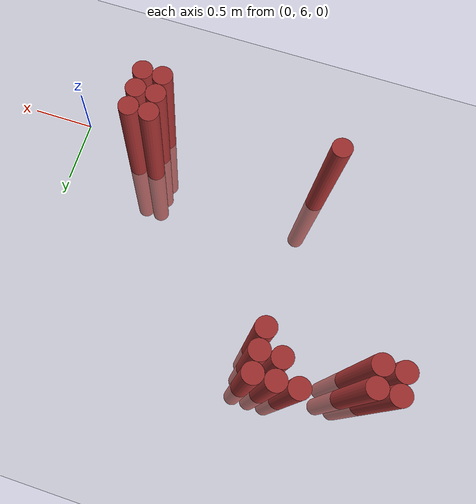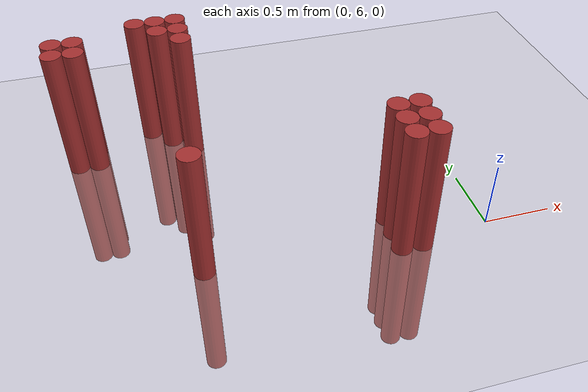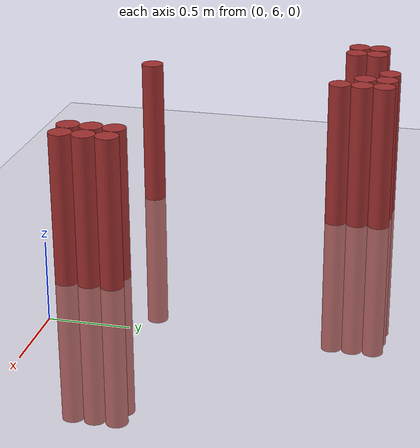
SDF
<sdf version="1.6">
 <world name="default">
  <model name="ground_plane">
   <static>1</static>
   <link name="link">
    <collision name="collision">
     <geometry><plane><normal>0 0 1</normal><size>100 100</size></plane></geometry>
     <surface><friction><ode><mu>100</mu><mu2>50</mu2></ode></friction></surface>
    </collision>
    <visual name="visual">
     <cast_shadows>0</cast_shadows>
     <geometry><plane><normal>0 0 1</normal><size>100 100</size></plane></geometry>
     <material>
      <script><uri>file://media/materials/scripts/gazebo.material</uri><name>Gazebo/Grey</name></script>
     </material>
    </visual>
   </link>
  </model>
  <model name="unit_cylinder_183">
   <static>1</static>
   <pose>-2.775000 7.425000 0.000000 0.000000 0.000000 0.000000</pose>
   <link name="link">
    <inertial>
     <mass>1</mass>
     <inertia><ixx>0.145833</ixx><ixy>0</ixy><ixz>0</ixz><iyy>0.145833</iyy><iyz>0</iyz><izz>0.125</izz></inertia>
    </inertial>
    <collision name="collision">
     <geometry><cylinder><radius>0.075000</radius><length>2</length></cylinder></geometry>
    </collision>
    <visual name="visual">
     <geometry><cylinder><radius>0.075000</radius><length>2</length></cylinder></geometry>
     <material>
      <ambient>0.648000 0.192000 0.192000 1</ambient>
      <diffuse>0.648000 0.192000 0.192000 1</diffuse>
     </material>
     <material>
      <script><name>Gazebo/Grey</name><uri>file://media/materials/scripts/gazebo.material</uri></script>
     </material>
    </visual>
   </link>
  </model>
  <model name="unit_cylinder_184">
   <static>1</static>
   <pose>-2.775000 7.575000 0.000000 0.000000 0.000000 0.000000</pose>
   <link name="link">
    <inertial>
     <mass>1</mass>
     <inertia><ixx>0.145833</ixx><ixy>0</ixy><ixz>0</ixz><iyy>0.145833</iyy><iyz>0</iyz><izz>0.125</izz></inertia>
    </inertial>
    <collision name="collision">
     <geometry><cylinder><radius>0.075000</radius><length>2</length></cylinder></geometry>
    </collision>
    <visual name="visual">
     <geometry><cylinder><radius>0.075000</radius><length>2</length></cylinder></geometry>
     <material>
      <ambient>0.648000 0.192000 0.192000 1</ambient>
      <diffuse>0.648000 0.192000 0.192000 1</diffuse>
     </material>
     <material>
      <script><name>Gazebo/Grey</name><uri>file://media/materials/scripts/gazebo.material</uri></script>
     </material>
    </visual>
   </link>
  </model>
  <model name="unit_cylinder_187">
   <static>1</static>
   <pose>-2.625000 7.425000 0.000000 0.000000 0.000000 0.000000</pose>
   <link name="link">
    <inertial>
     <mass>1</mass>
     <inertia><ixx>0.145833</ixx><ixy>0</ixy><ixz>0</ixz><iyy>0.145833</iyy><iyz>0</iyz><izz>0.125</izz></inertia>
    </inertial>
    <collision name="collision">
     <geometry><cylinder><radius>0.075000</radius><length>2</length></cylinder></geometry>
    </collision>
    <visual name="visual">
     <geometry><cylinder><radius>0.075000</radius><length>2</length></cylinder></geometry>
     <material>
      <ambient>0.648000 0.192000 0.192000 1</ambient>
      <diffuse>0.648000 0.192000 0.192000 1</diffuse>
     </material>
     <material>
      <script><name>Gazebo/Grey</name><uri>file://media/materials/scripts/gazebo.material</uri></script>
     </material>
    </visual>
   </link>
  </model>
  <model name="unit_cylinder_188">
   <static>1</static>
   <pose>-2.625000 7.575000 0.000000 0.000000 0.000000 0.000000</pose>
   <link name="link">
    <inertial>
     <mass>1</mass>
     <inertia><ixx>0.145833</ixx><ixy>0</ixy><ixz>0</ixz><iyy>0.145833</iyy><iyz>0</iyz><izz>0.125</izz></inertia>
    </inertial>
    <collision name="collision">
     <geometry><cylinder><radius>0.075000</radius><length>2</length></cylinder></geometry>
    </collision>
    <visual name="visual">
     <geometry><cylinder><radius>0.075000</radius><length>2</length></cylinder></geometry>
     <material>
      <ambient>0.648000 0.192000 0.192000 1</ambient>
      <diffuse>0.648000 0.192000 0.192000 1</diffuse>
     </material>
     <material>
      <script><name>Gazebo/Grey</name><uri>file://media/materials/scripts/gazebo.material</uri></script>
     </material>
    </visual>
   </link>
  </model>
  <model name="unit_cylinder_196">
   <static>1</static>
   <pose>-2.175000 7.725000 0.000000 0.000000 0.000000 0.000000</pose>
   <link name="link">
    <inertial>
     <mass>1</mass>
     <inertia><ixx>0.145833</ixx><ixy>0</ixy><ixz>0</ixz><iyy>0.145833</iyy><iyz>0</iyz><izz>0.125</izz></inertia>
    </inertial>
    <collision name="collision">
     <geometry><cylinder><radius>0.075000</radius><length>2</length></cylinder></geometry>
    </collision>
    <visual name="visual">
     <geometry><cylinder><radius>0.075000</radius><length>2</length></cylinder></geometry>
     <material>
      <ambient>0.648000 0.192000 0.192000 1</ambient>
      <diffuse>0.648000 0.192000 0.192000 1</diffuse>
     </material>
     <material>
      <script><name>Gazebo/Grey</name><uri>file://media/materials/scripts/gazebo.material</uri></script>
     </material>
    </visual>
   </link>
  </model>
  <model name="unit_cylinder_201">
   <static>1</static>
   <pose>-2.025000 6.075000 0.000000 0.000000 0.000000 0.000000</pose>
   <link name="link">
    <inertial>
     <mass>1</mass>
     <inertia><ixx>0.145833</ixx><ixy>0</ixy><ixz>0</ixz><iyy>0.145833</iyy><iyz>0</iyz><izz>0.125</izz></inertia>
    </inertial>
    <collision name="collision">
     <geometry><cylinder><radius>0.075000</radius><length>2</length></cylinder></geometry>
    </collision>
    <visual name="visual">
     <geometry><cylinder><radius>0.075000</radius><length>2</length></cylinder></geometry>
     <material>
      <ambient>0.648000 0.192000 0.192000 1</ambient>
      <diffuse>0.648000 0.192000 0.192000 1</diffuse>
     </material>
     <material>
      <script><name>Gazebo/Grey</name><uri>file://media/materials/scripts/gazebo.material</uri></script>
     </material>
    </visual>
   </link>
  </model>
  <model name="unit_cylinder_202">
   <static>1</static>
   <pose>-2.025000 7.575000 0.000000 0.000000 0.000000 0.000000</pose>
   <link name="link">
    <inertial>
     <mass>1</mass>
     <inertia><ixx>0.145833</ixx><ixy>0</ixy><ixz>0</ixz><iyy>0.145833</iyy><iyz>0</iyz><izz>0.125</izz></inertia>
    </inertial>
    <collision name="collision">
     <geometry><cylinder><radius>0.075000</radius><length>2</length></cylinder></geometry>
    </collision>
    <visual name="visual">
     <geometry><cylinder><radius>0.075000</radius><length>2</length></cylinder></geometry>
     <material>
      <ambient>0.648000 0.192000 0.192000 1</ambient>
      <diffuse>0.648000 0.192000 0.192000 1</diffuse>
     </material>
     <material>
      <script><name>Gazebo/Grey</name><uri>file://media/materials/scripts/gazebo.material</uri></script>
     </material>
    </visual>
   </link>
  </model>
  <model name="unit_cylinder_203">
   <static>1</static>
   <pose>-2.025000 7.725000 0.000000 0.000000 0.000000 0.000000</pose>
   <link name="link">
    <inertial>
     <mass>1</mass>
     <inertia><ixx>0.145833</ixx><ixy>0</ixy><ixz>0</ixz><iyy>0.145833</iyy><iyz>0</iyz><izz>0.125</izz></inertia>
    </inertial>
    <collision name="collision">
     <geometry><cylinder><radius>0.075000</radius><length>2</length></cylinder></geometry>
    </collision>
    <visual name="visual">
     <geometry><cylinder><radius>0.075000</radius><length>2</length></cylinder></geometry>
     <material>
      <ambient>0.648000 0.192000 0.192000 1</ambient>
      <diffuse>0.648000 0.192000 0.192000 1</diffuse>
     </material>
     <material>
      <script><name>Gazebo/Grey</name><uri>file://media/materials/scripts/gazebo.material</uri></script>
     </material>
    </visual>
   </link>
  </model>
  <model name="unit_cylinder_208">
   <static>1</static>
   <pose>-1.875000 7.425000 0.000000 0.000000 0.000000 0.000000</pose>
   <link name="link">
    <inertial>
     <mass>1</mass>
     <inertia><ixx>0.145833</ixx><ixy>0</ixy><ixz>0</ixz><iyy>0.145833</iyy><iyz>0</iyz><izz>0.125</izz></inertia>
    </inertial>
    <collision name="collision">
     <geometry><cylinder><radius>0.075000</radius><length>2</length></cylinder></geometry>
    </collision>
    <visual name="visual">
     <geometry><cylinder><radius>0.075000</radius><length>2</length></cylinder></geometry>
     <material>
      <ambient>0.648000 0.192000 0.192000 1</ambient>
      <diffuse>0.648000 0.192000 0.192000 1</diffuse>
     </material>
     <material>
      <script><name>Gazebo/Grey</name><uri>file://media/materials/scripts/gazebo.material</uri></script>
     </material>
    </visual>
   </link>
  </model>
  <model name="unit_cylinder_209">
   <static>1</static>
   <pose>-1.875000 7.575000 0.000000 0.000000 0.000000 0.000000</pose>
   <link name="link">
    <inertial>
     <mass>1</mass>
     <inertia><ixx>0.145833</ixx><ixy>0</ixy><ixz>0</ixz><iyy>0.145833</iyy><iyz>0</iyz><izz>0.125</izz></inertia>
    </inertial>
    <collision name="collision">
     <geometry><cylinder><radius>0.075000</radius><length>2</length></cylinder></geometry>
    </collision>
    <visual name="visual">
     <geometry><cylinder><radius>0.075000</radius><length>2</length></cylinder></geometry>
     <material>
      <ambient>0.648000 0.192000 0.192000 1</ambient>
      <diffuse>0.648000 0.192000 0.192000 1</diffuse>
     </material>
     <material>
      <script><name>Gazebo/Grey</name><uri>file://media/materials/scripts/gazebo.material</uri></script>
     </material>
    </visual>
   </link>
  </model>
  <model name="unit_cylinder_210">
   <static>1</static>
   <pose>-1.875000 7.725000 0.000000 0.000000 0.000000 0.000000</pose>
   <link name="link">
    <inertial>
     <mass>1</mass>
     <inertia><ixx>0.145833</ixx><ixy>0</ixy><ixz>0</ixz><iyy>0.145833</iyy><iyz>0</iyz><izz>0.125</izz></inertia>
    </inertial>
    <collision name="collision">
     <geometry><cylinder><radius>0.075000</radius><length>2</length></cylinder></geometry>
    </collision>
    <visual name="visual">
     <geometry><cylinder><radius>0.075000</radius><length>2</length></cylinder></geometry>
     <material>
      <ambient>0.648000 0.192000 0.192000 1</ambient>
      <diffuse>0.648000 0.192000 0.192000 1</diffuse>
     </material>
     <material>
      <script><name>Gazebo/Grey</name><uri>file://media/materials/scripts/gazebo.material</uri></script>
     </material>
    </visual>
   </link>
  </model>
  <model name="unit_cylinder_221">
   <static>1</static>
   <pose>-0.675000 5.925000 0.000000 0.000000 0.000000 0.000000</pose>
   <link name="link">
    <inertial>
     <mass>1</mass>
     <inertia><ixx>0.145833</ixx><ixy>0</ixy><ixz>0</ixz><iyy>0.145833</iyy><iyz>0</iyz><izz>0.125</izz></inertia>
    </inertial>
    <collision name="collision">
     <geometry><cylinder><radius>0.075000</radius><length>2</length></cylinder></geometry>
    </collision>
    <visual name="visual">
     <geometry><cylinder><radius>0.075000</radius><length>2</length></cylinder></geometry>
     <material>
      <ambient>0.648000 0.192000 0.192000 1</ambient>
      <diffuse>0.648000 0.192000 0.192000 1</diffuse>
     </material>
     <material>
      <script><name>Gazebo/Grey</name><uri>file://media/materials/scripts/gazebo.material</uri></script>
     </material>
    </visual>
   </link>
  </model>
  <model name="unit_cylinder_222">
   <static>1</static>
   <pose>-0.675000 6.075000 0.000000 0.000000 0.000000 0.000000</pose>
   <link name="link">
    <inertial>
     <mass>1</mass>
     <inertia><ixx>0.145833</ixx><ixy>0</ixy><ixz>0</ixz><iyy>0.145833</iyy><iyz>0</iyz><izz>0.125</izz></inertia>
    </inertial>
    <collision name="collision">
     <geometry><cylinder><radius>0.075000</radius><length>2</length></cylinder></geometry>
    </collision>
    <visual name="visual">
     <geometry><cylinder><radius>0.075000</radius><length>2</length></cylinder></geometry>
     <material>
      <ambient>0.648000 0.192000 0.192000 1</ambient>
      <diffuse>0.648000 0.192000 0.192000 1</diffuse>
     </material>
     <material>
      <script><name>Gazebo/Grey</name><uri>file://media/materials/scripts/gazebo.material</uri></script>
     </material>
    </visual>
   </link>
  </model>
  <model name="unit_cylinder_223">
   <static>1</static>
   <pose>-0.675000 6.225000 0.000000 0.000000 0.000000 0.000000</pose>
   <link name="link">
    <inertial>
     <mass>1</mass>
     <inertia><ixx>0.145833</ixx><ixy>0</ixy><ixz>0</ixz><iyy>0.145833</iyy><iyz>0</iyz><izz>0.125</izz></inertia>
    </inertial>
    <collision name="collision">
     <geometry><cylinder><radius>0.075000</radius><length>2</length></cylinder></geometry>
    </collision>
    <visual name="visual">
     <geometry><cylinder><radius>0.075000</radius><length>2</length></cylinder></geometry>
     <material>
      <ambient>0.648000 0.192000 0.192000 1</ambient>
      <diffuse>0.648000 0.192000 0.192000 1</diffuse>
     </material>
     <material>
      <script><name>Gazebo/Grey</name><uri>file://media/materials/scripts/gazebo.material</uri></script>
     </material>
    </visual>
   </link>
  </model>
  <model name="unit_cylinder_225">
   <static>1</static>
   <pose>-0.525000 5.925000 0.000000 0.000000 0.000000 0.000000</pose>
   <link name="link">
    <inertial>
     <mass>1</mass>
     <inertia><ixx>0.145833</ixx><ixy>0</ixy><ixz>0</ixz><iyy>0.145833</iyy><iyz>0</iyz><izz>0.125</izz></inertia>
    </inertial>
    <collision name="collision">
     <geometry><cylinder><radius>0.075000</radius><length>2</length></cylinder></geometry>
    </collision>
    <visual name="visual">
     <geometry><cylinder><radius>0.075000</radius><length>2</length></cylinder></geometry>
     <material>
      <ambient>0.648000 0.192000 0.192000 1</ambient>
      <diffuse>0.648000 0.192000 0.192000 1</diffuse>
     </material>
     <material>
      <script><name>Gazebo/Grey</name><uri>file://media/materials/scripts/gazebo.material</uri></script>
     </material>
    </visual>
   </link>
  </model>
  <model name="unit_cylinder_226">
   <static>1</static>
   <pose>-0.525000 6.075000 0.000000 0.000000 0.000000 0.000000</pose>
   <link name="link">
    <inertial>
     <mass>1</mass>
     <inertia><ixx>0.145833</ixx><ixy>0</ixy><ixz>0</ixz><iyy>0.145833</iyy><iyz>0</iyz><izz>0.125</izz></inertia>
    </inertial>
    <collision name="collision">
     <geometry><cylinder><radius>0.075000</radius><length>2</length></cylinder></geometry>
    </collision>
    <visual name="visual">
     <geometry><cylinder><radius>0.075000</radius><length>2</length></cylinder></geometry>
     <material>
      <ambient>0.648000 0.192000 0.192000 1</ambient>
      <diffuse>0.648000 0.192000 0.192000 1</diffuse>
     </material>
     <material>
      <script><name>Gazebo/Grey</name><uri>file://media/materials/scripts/gazebo.material</uri></script>
     </material>
    </visual>
   </link>
  </model>
  <model name="unit_cylinder_227">
   <static>1</static>
   <pose>-0.525000 6.225000 0.000000 0.000000 0.000000 0.000000</pose>
   <link name="link">
    <inertial>
     <mass>1</mass>
     <inertia><ixx>0.145833</ixx><ixy>0</ixy><ixz>0</ixz><iyy>0.145833</iyy><iyz>0</iyz><izz>0.125</izz></inertia>
    </inertial>
    <collision name="collision">
     <geometry><cylinder><radius>0.075000</radius><length>2</length></cylinder></geometry>
    </collision>
    <visual name="visual">
     <geometry><cylinder><radius>0.075000</radius><length>2</length></cylinder></geometry>
     <material>
      <ambient>0.648000 0.192000 0.192000 1</ambient>
      <diffuse>0.648000 0.192000 0.192000 1</diffuse>
     </material>
     <material>
      <script><name>Gazebo/Grey</name><uri>file://media/materials/scripts/gazebo.material</uri></script>
     </material>
    </visual>
   </link>
  </model>
 </world>
</sdf>
